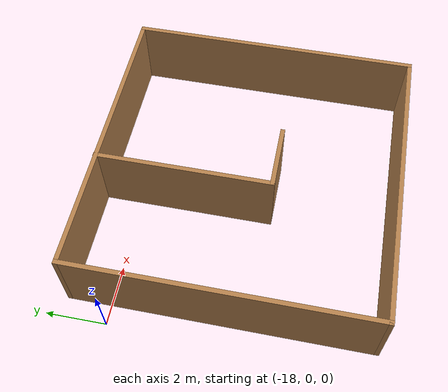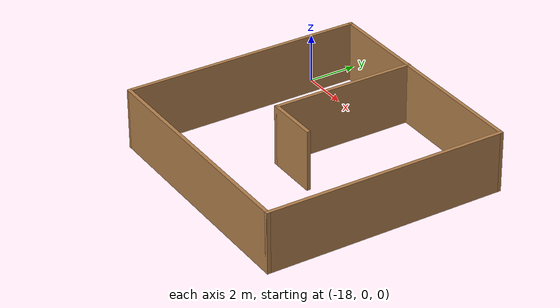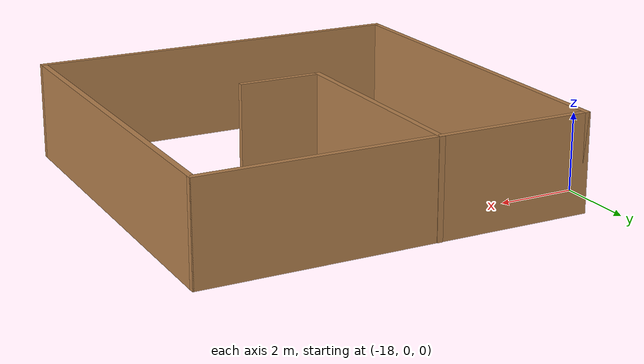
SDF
<?xml version='1.0'?>
<sdf version='1.7'>
  <model name='house2'>
    <pose>-8.68107 -3.53168 0 0 -0 0</pose>
    <link name='Wall_0'>
      <collision name='Wall_0_Collision'>
        <geometry>
          <box>
            <size>10 0.15 2.5</size>
          </box>
        </geometry>
        <pose>0 0 1.25 0 -0 0</pose>
      </collision>
      <visual name='Wall_0_Visual'>
        <pose>0 0 1.25 0 -0 0</pose>
        <geometry>
          <box>
            <size>10 0.15 2.5</size>
          </box>
        </geometry>
        <material>
          <script>
            <uri>file://media/materials/scripts/gazebo.material</uri>
            <name>Gazebo/Wood</name>
          </script>
          <ambient>0.760784 0.662745 0.627451 1</ambient>
        </material>
        <meta>
          <layer>0</layer>
        </meta>
      </visual>
      <pose>-3.68093 -4.93232 0 0 -0 0</pose>
    </link>
    <link name='Wall_1'>
      <collision name='Wall_1_Collision'>
        <geometry>
          <box>
            <size>10 0.15 2.5</size>
          </box>
        </geometry>
        <pose>0 0 1.25 0 -0 0</pose>
      </collision>
      <visual name='Wall_1_Visual'>
        <pose>0 0 1.25 0 -0 0</pose>
        <geometry>
          <box>
            <size>10 0.15 2.5</size>
          </box>
        </geometry>
        <material>
          <script>
            <uri>file://media/materials/scripts/gazebo.material</uri>
            <name>Gazebo/Wood</name>
          </script>
          <ambient>1 1 1 1</ambient>
        </material>
        <meta>
          <layer>0</layer>
        </meta>
      </visual>
      <pose>1.24393 -0.007321 0 0 -0 1.57082</pose>
    </link>
    <link name='Wall_3'>
      <collision name='Wall_3_Collision'>
        <geometry>
          <box>
            <size>10 0.15 2.5</size>
          </box>
        </geometry>
        <pose>0 0 1.25 0 -0 0</pose>
      </collision>
      <visual name='Wall_3_Visual'>
        <pose>0 0 1.25 0 -0 0</pose>
        <geometry>
          <box>
            <size>10 0.15 2.5</size>
          </box>
        </geometry>
        <material>
          <script>
            <uri>file://media/materials/scripts/gazebo.material</uri>
            <name>Gazebo/Wood</name>
          </script>
          <ambient>1 1 1 1</ambient>
        </material>
        <meta>
          <layer>0</layer>
        </meta>
      </visual>
      <pose>-8.60593 -0.007321 0 0 -0 1.5708</pose>
    </link>
    <link name='Wall_4'>
      <collision name='Wall_4_Collision'>
        <geometry>
          <box>
            <size>10 0.15 2.5</size>
          </box>
        </geometry>
        <pose>0 0 1.25 0 -0 0</pose>
      </collision>
      <visual name='Wall_4_Visual'>
        <pose>0 0 1.25 0 -0 0</pose>
        <geometry>
          <box>
            <size>10 0.15 2.5</size>
          </box>
        </geometry>
        <material>
          <script>
            <uri>file://media/materials/scripts/gazebo.material</uri>
            <name>Gazebo/Wood</name>
          </script>
          <ambient>1 1 1 1</ambient>
        </material>
        <meta>
          <layer>0</layer>
        </meta>
      </visual>
      <pose>-3.68107 4.91768 0 0 -0 0</pose>
    </link>
    <link name='Wall_6'>
      <collision name='Wall_6_Collision'>
        <geometry>
          <box>
            <size>6 0.15 2.5</size>
          </box>
        </geometry>
        <pose>0 0 1.25 0 -0 0</pose>
      </collision>
      <visual name='Wall_6_Visual'>
        <pose>0 0 1.25 0 -0 0</pose>
        <geometry>
          <box>
            <size>6 0.15 2.5</size>
          </box>
        </geometry>
        <material>
          <script>
            <uri>file://media/materials/scripts/gazebo.material</uri>
            <name>Gazebo/Wood</name>
          </script>
          <ambient>1 1 1 1</ambient>
        </material>
        <meta>
          <layer>0</layer>
        </meta>
      </visual>
      <pose>-4.65786 2.00732 0 0 -0 -1.5708</pose>
    </link>
    <link name='Wall_8'>
      <collision name='Wall_8_Collision'>
        <geometry>
          <box>
            <size>2.25 0.15 2.5</size>
          </box>
        </geometry>
        <pose>0 0 1.25 0 -0 0</pose>
      </collision>
      <visual name='Wall_8_Visual'>
        <pose>0 0 1.25 0 -0 0</pose>
        <geometry>
          <box>
            <size>2.25 0.15 2.5</size>
          </box>
        </geometry>
        <material>
          <script>
            <uri>file://media/materials/scripts/gazebo.material</uri>
            <name>Gazebo/Wood</name>
          </script>
          <ambient>1 1 1 1</ambient>
        </material>
        <meta>
          <layer>0</layer>
        </meta>
      </visual>
      <pose>-3.60786 -0.917679 0 0 -0 0</pose>
    </link>
    <static>1</static>
  </model>
</sdf>
